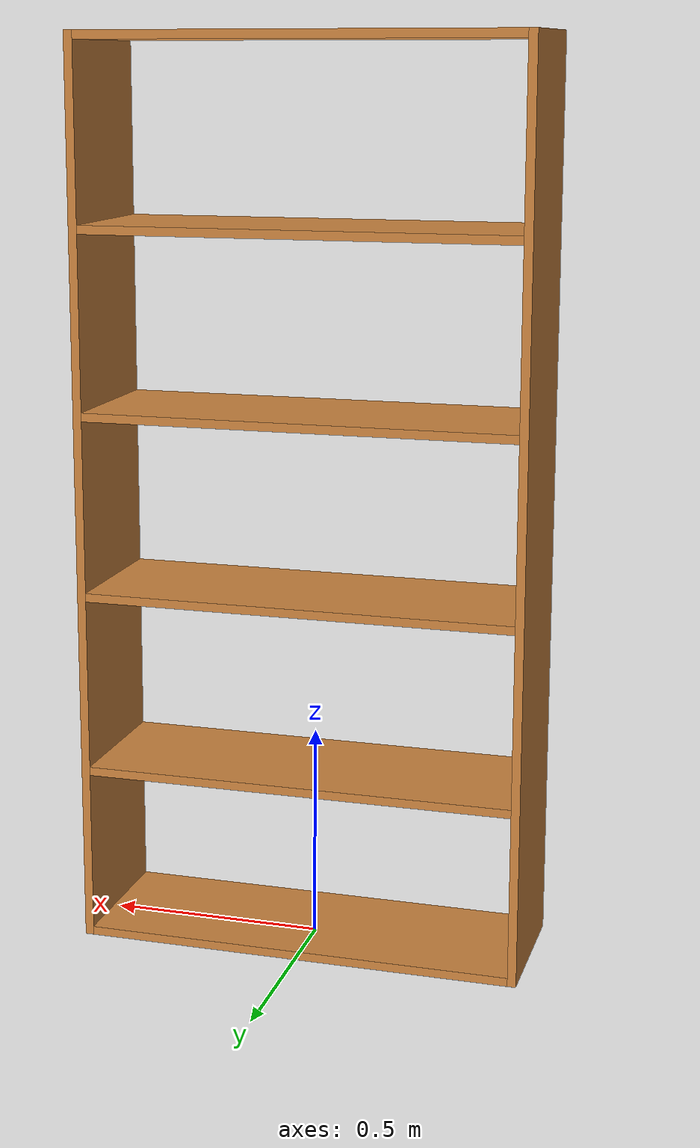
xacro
<?xml version="1.0"?>

<robot name="estanteria" xmlns:xacro="http://www.ros.org/wiki/xacro">

<xacro:property name="altura" value="2.1" />
<xacro:property name="ancho" value="0.35" />
<xacro:property name="largo" value="1" />

<link name="world" />

<joint name="estanteria" type="floating">
  <parent link="world"/>
  <child link="estanteria_link"/>
  <origin xyz="0 0 0" rpy="0 0 0" />
</joint>

<link name="estanteria_link">
  <visual>
    <geometry>
      <box size="${largo} ${ancho} 0.02" />
    </geometry>
    <origin rpy="0 0 0" xyz="0 0 ${0.02/2}" />
    <material name="wood">
		<color rgba="${205/255} ${133/255} ${63/255} 1" />
    </material>
  </visual>
  <collision>
    <origin rpy="0 0 0" xyz="0 0 ${0.02/2}" />
    <geometry>
      <box size="${largo} ${ancho} 0.02" />
    </geometry>
  </collision>
  <inertial>
    <origin rpy="0 0 0" xyz="0 0 ${0.02/2}" />
    <mass value="1" />
      <inertia ixx="0.01" ixy="0.0" ixz="0.0" iyy="0.01" iyz="0.0" izz="0.01"/>
  </inertial>
</link>

<xacro:macro name="lateral" params="id refx">
<joint name="lateral_${id}" type="fixed">
  <parent link="estanteria_link"/>
  <child link="lateral_${id}_link"/>
  <origin xyz="${refx*((largo/2)+(0.02/2))} 0 0" rpy="0 0 0" />
</joint>

<link name="lateral_${id}_link">
  <visual>
    <geometry>
      <box size="0.02 ${ancho} ${altura}" />
    </geometry>
    <origin rpy="0 0 0" xyz="0 0 ${altura/2}" />
      <material name="wood" />
  </visual>
  <collision>
    <origin rpy="0 0 0" xyz="0 0 ${altura/2}" />
    <geometry>
      <box size="0.02 ${ancho} ${altura}" />
    </geometry>
  </collision>
  <inertial>
    <origin rpy="0 0 0" xyz="0 0 ${altura/2}" />
    <mass value="2" />
      <inertia ixx="0.01" ixy="0.0" ixz="0.0" iyy="0.01" iyz="0.0" izz="0.01"/>
  </inertial>
</link>
</xacro:macro>

<xacro:lateral id="1" refx="1" />
<xacro:lateral id="2" refx="-1" />

<xacro:macro name="basal" params="id refz">
<joint name="basal_${id}" type="fixed">
  <parent link="estanteria_link"/>
  <child link="basal_${id}_link"/>
  <origin xyz="0 0 ${refz*(altura/5)}" rpy="0 0 0" />
</joint>

<link name="basal_${id}_link">
  <visual>
    <geometry>
      <box size="${largo} ${ancho} 0.02" />
    </geometry>
    <origin rpy="0 0 0" xyz="0 0 -${0.02/2}" />
      <material name="wood" />
  </visual>
  <collision>
    <origin rpy="0 0 0" xyz="0 0 -${0.02/2}" />
    <geometry>
      <box size="${largo} ${ancho} 0.02" />
    </geometry>
  </collision>
  <inertial>
    <origin rpy="0 0 0" xyz="0 0 -${0.02/2}" />
    <mass value="1" />
      <inertia ixx="0.01" ixy="0.0" ixz="0.0" iyy="0.01" iyz="0.0" izz="0.01"/>
  </inertial>
</link>
</xacro:macro>

<xacro:basal id="1" refz="1" />
<xacro:basal id="2" refz="2" />
<xacro:basal id="3" refz="3" />
<xacro:basal id="4" refz="4" />
<xacro:basal id="5" refz="5" />

<gazebo reference="estanteria_link">
  <material>Gazebo/Wood</material>
  <mu1>1</mu1>
  <mu2>1</mu2>
  <selfCollide>true</selfCollide>
  <turnGravityOff>false</turnGravityOff>
</gazebo>

<xacro:macro name="gazebo_lateral" params="id">
<gazebo reference="lateral_${id}_link">
  <material>Gazebo/Wood</material>
  <mu1>1</mu1>
  <mu2>1</mu2>
  <selfCollide>true</selfCollide>
  <turnGravityOff>false</turnGravityOff>
</gazebo>
</xacro:macro>

<xacro:gazebo_lateral id="1"/>
<xacro:gazebo_lateral id="2"/>

<xacro:macro name="gazebo_basal" params="id">
<gazebo reference="basal_${id}_link">
  <material>Gazebo/Wood</material>
  <mu1>1</mu1>
  <mu2>1</mu2>
  <selfCollide>true</selfCollide>
  <turnGravityOff>false</turnGravityOff>
</gazebo>
</xacro:macro>

<xacro:gazebo_basal id="1"/>
<xacro:gazebo_basal id="2"/>
<xacro:gazebo_basal id="3"/>
<xacro:gazebo_basal id="4"/>
<xacro:gazebo_basal id="5"/>

</robot>
